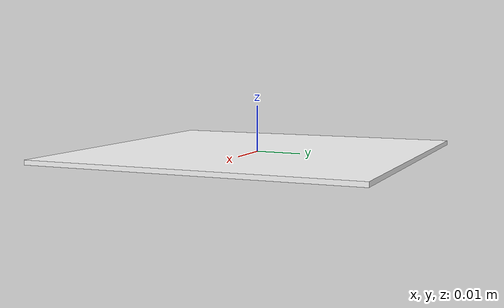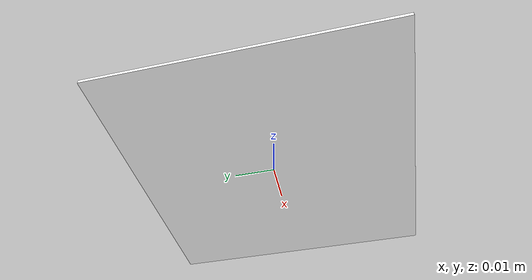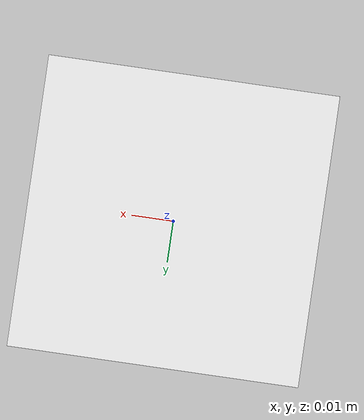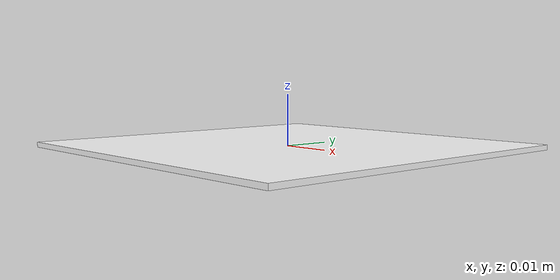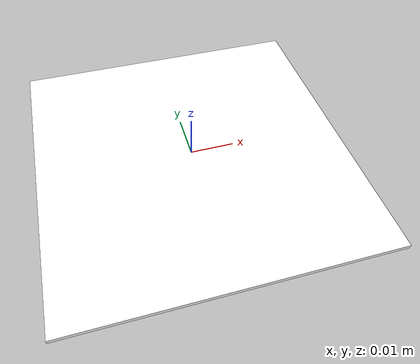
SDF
<?xml version="1.0" ?>
<sdf version="1.6">
  <model name="aruco999">
    <static>true</static>
    <link name="aruco_link">

      <inertial>
        <mass>0.001</mass> <inertia>
          <ixx>0.00000012</ixx>
          <ixy>0</ixy>
          <ixz>0</ixz>
          <iyy>0.00000012</iyy>
          <iyz>0</iyz>
          <izz>0.000000000001</izz>
        </inertia>
      </inertial>

      <visual name="aruco_visual">
        <pose>0 0 0 0 0 0</pose>
        <geometry>
          <box>
            <size>0.07 0.07 0.001</size>
          </box>
        </geometry>
        <material>
          <diffuse>1 1 1 1</diffuse>
          <specular>0.4 0.4 0.4 1</specular>
          <pbr>
            <metal>
              <albedo_map>model://aruco999/materials/textures/aruco-999.png</albedo_map>
            </metal>
          </pbr>
        </material>
      </visual>

      <collision name="aruco_collision">
        <geometry>
          <box>
            <size>0.1 0.1 0.001</size>
          </box>
        </geometry>
      </collision>
    </link>
  </model>
</sdf>
